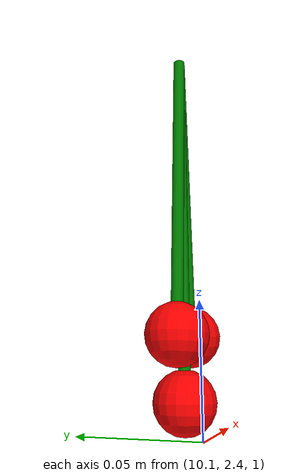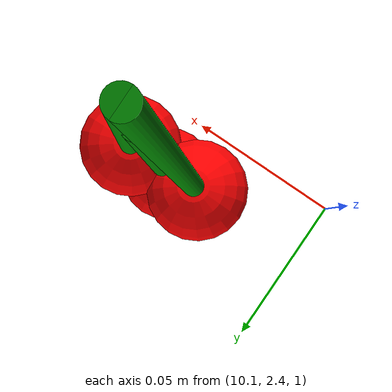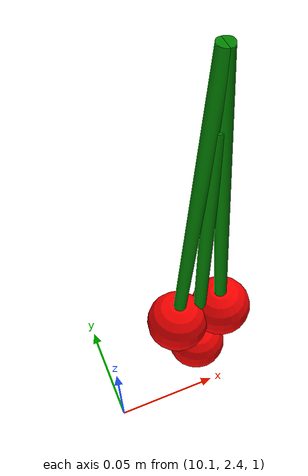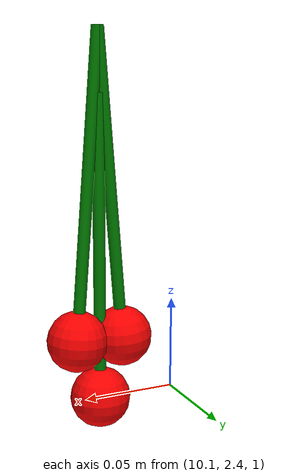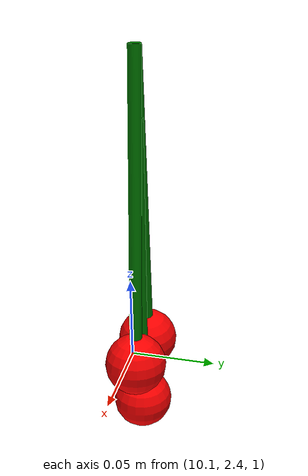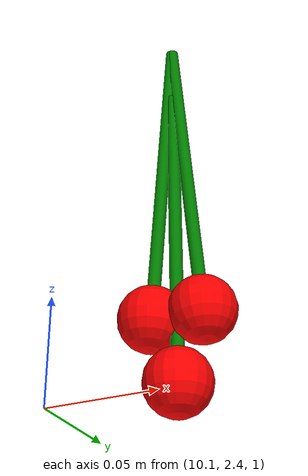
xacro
<?xml version="1.0"?>
<robot xmlns:xacro="http://www.ros.org/wiki/xacro" name="straw_cluster5">

<xacro:arg name="tf_prefix" default=""/>

<link name="world"/>

<!-- Robot1 -->
<link name="$(arg tf_prefix)/yball_stem13">
  <gravity>1</gravity>
  <inertial>
    <origin xyz="0 0 0" rpy="0 0 0"/>
    <mass value=".00001"/>
    <inertia ixx="0.0000004" ixy="0.0" ixz="0.0" iyy="0.0000004" iyz="0.0" izz="0.0000004" />
  </inertial>
  <visual><geometry><sphere radius=".00001"/></geometry></visual>
  <collision><geometry><sphere radius=".00001"/></geometry></collision>
</link>
<gazebo reference="$(arg tf_prefix)/yball_stem13">
  <material>Gazebo/Green</material>
</gazebo>

<joint name="$(arg tf_prefix)/stem13y" type="revolute" >
  <parent link="world" />
  <child link="$(arg tf_prefix)/yball_stem13" />
  <origin xyz="10.15 2.42 1.16" rpy="0 0 0"/>
  <axis xyz="0 1 0" />
  <dynamics damping="0.0001" friction="0.0002"/>
  <limit
      lower="-${pi}" upper="${pi}"
      effort="1" velocity="0.1" />
</joint>

<link name="$(arg tf_prefix)/xball_stem13">
  <gravity>1</gravity>
  <inertial>
    <origin xyz="0 0 0" rpy="0 0 0"/>
    <mass value=".00001"/>
    <inertia ixx="0.0000004" ixy="0.0" ixz="0.0" iyy="0.0000004" iyz="0.0" izz="0.0000004" />
  </inertial>
  <visual><geometry><sphere radius=".00001"/></geometry></visual>
  <collision><geometry><sphere radius=".00001"/></geometry></collision>
</link>
<gazebo reference="$(arg tf_prefix)/xball_stem13">
  <material>Gazebo/Green</material>
</gazebo>

<joint name="$(arg tf_prefix)/stem13x" type="revolute" >
  <parent link="$(arg tf_prefix)/yball_stem13"/>
  <child link="$(arg tf_prefix)/xball_stem13"/>
  <origin xyz="0 0 0" rpy="0 0 0"/>
  <axis xyz="1 0 0" />
  <dynamics damping="0.0001" friction="0.0002" />
  <limit
      lower="-${pi}" upper="${pi}"
      effort="1" velocity="0.1" />
</joint>

<!-- Define stem of straw13 -->
<link name="$(arg tf_prefix)/stem13">
  <gravity>1</gravity>
  <inertial>
    <origin xyz="0 0 0" rpy="0 0 0"/>
    <mass value="0.001"/>
    <inertia
      ixx="0.0000000005" ixy="0.0" ixz="0.0"
      iyy="0.0000000005" iyz="0.0"
      izz="0.0000000005"/>
  </inertial>
  <collision>
    <geometry>
		<cylinder length="0.15" radius="0.003"/>
    </geometry>
    <material name="green">
      <color rgba="0 ${128/255} 0 1"/>
    </material>
    <origin xyz="0 0 -0.075" rpy="0 0 0"/>
  </collision>
  <visual>
    <geometry>
		<cylinder length="0.15" radius="0.003"/>
    </geometry>
    <material name="green">
      <color rgba="0 ${128/255} 0 1"/>
    </material>
    <origin xyz="0 0 -0.075" rpy="0 0 0"/>
  </visual>
</link>
<gazebo reference="$(arg tf_prefix)/stem13">
  <mu1>0.01</mu1>
  <mu2>0.01</mu2>
  <selfCollide>true</selfCollide>
  <maxContacts>2</maxContacts>
  <minDepth>0</minDepth>
  <maxVel>0.01</maxVel>
  <kp  value="1" />
  <kd  value="0.1" />
  <material>Gazebo/Green</material>
</gazebo>

<joint name="$(arg tf_prefix)/xball_stem13" type="fixed">
  <parent link="$(arg tf_prefix)/xball_stem13"/>
  <child link="$(arg tf_prefix)/stem13"/>
  <origin xyz="0 0 0" rpy="0 0 0"/>
</joint>

<!-- Define straw4 -->
<link name="$(arg tf_prefix)/straw13">
  <gravity>1</gravity>
  <inertial>
    <origin xyz="0 0 0" rpy="0 0 0"/>
    <mass value="0.002"/>
    <inertia
      ixx="0.00000018" ixy="0.0" ixz="0.0"
      iyy="0.00000018" iyz="0.0"
      izz="0.00000018"/>
  </inertial>
  <collision>
    <geometry>
    <sphere radius="0.015"/>
    </geometry>
  </collision>
  <visual>
    <geometry>
		<sphere radius="0.015"/>
    </geometry>
    <material name="Red">
      <color rgba="1 0 0 1"/>
    </material>
  </visual>
</link>
<gazebo reference="$(arg tf_prefix)/straw13">
  <mu1>0.01</mu1>
  <mu2>0.01</mu2>
  <selfCollide>true</selfCollide>
  <maxContacts>2</maxContacts>
  <minDepth>0</minDepth>
  <maxVel>0.01</maxVel>
  <kp  value="1" />
  <kd  value="0.1" />
  <material>Gazebo/Red</material>
</gazebo>

<joint name="$(arg tf_prefix)/straw13_stem13" type="fixed">
  <parent link="$(arg tf_prefix)/stem13"/>
  <child link="$(arg tf_prefix)/straw13"/>
  <origin xyz="0 0 -0.15" rpy="0 0 0"/>
</joint>

<!-- Robot2 -->
<link name="$(arg tf_prefix)/yball_stem14">
  <gravity>1</gravity>
  <inertial>
    <origin xyz="0 0 0" rpy="0 0 0"/>
    <mass value=".00001"/>
    <inertia ixx="0.0000004" ixy="0.0" ixz="0.0" iyy="0.0000004" iyz="0.0" izz="0.0000004" />
  </inertial>
  <visual><geometry><sphere radius=".00001"/></geometry></visual>
  <collision><geometry><sphere radius=".00001"/></geometry></collision>
</link>
<gazebo reference="$(arg tf_prefix)/yball_stem14">
  <material>Gazebo/Green</material>
</gazebo>

<joint name="$(arg tf_prefix)/stem14y" type="revolute" >
  <parent link="world" />
  <child link="$(arg tf_prefix)/yball_stem14" />
  <origin xyz="10.15 2.42 1.19" rpy="0 -${pi/40} 0"/> <!-- 0 -${pi/40} 0 -->
  <axis xyz="0 1 0" />
  <dynamics damping="0.0001" friction="0.0002"/>
  <limit
      lower="-${pi}" upper="${pi}"
      effort="1" velocity="0.1" />
</joint>

<link name="$(arg tf_prefix)/xball_stem14">
  <gravity>1</gravity>
  <inertial>
    <origin xyz="0 0 0" rpy="0 0 0"/>
    <mass value=".00001"/>
    <inertia ixx="0.0000004" ixy="0.0" ixz="0.0" iyy="0.0000004" iyz="0.0" izz="0.0000004" />
  </inertial>
  <visual><geometry><sphere radius=".00001"/></geometry></visual>
  <collision><geometry><sphere radius=".00001"/></geometry></collision>
</link>
<gazebo reference="$(arg tf_prefix)/xball_stem14">
  <material>Gazebo/Green</material>
</gazebo>

<joint name="$(arg tf_prefix)/stem14x" type="revolute" >
  <parent link="$(arg tf_prefix)/yball_stem14"/>
  <child link="$(arg tf_prefix)/xball_stem14"/>
  <origin xyz="0 0 0" rpy="0 0 0"/>
  <axis xyz="1 0 0" />
  <dynamics damping="0.0001" friction="0.0002" />
  <limit
      lower="-${pi}" upper="${pi}"
      effort="1" velocity="0.1" />
</joint>

<!-- Define stem of straw14 -->
<link name="$(arg tf_prefix)/stem14">
  <gravity>1</gravity>
  <inertial>
    <origin xyz="0 0 0" rpy="0 0 0"/>
    <mass value="0.001"/>
    <inertia
      ixx="0.0000000005" ixy="0.0" ixz="0.0"
      iyy="0.0000000005" iyz="0.0"
      izz="0.0000000005"/>
  </inertial>
  <collision>
    <geometry>
		<cylinder length="0.15" radius="0.003"/>
    </geometry>
    <material name="green">
      <color rgba="0 ${128/255} 0 1"/>
    </material>
    <origin xyz="0 0 -0.075" rpy="0 0 0"/>
  </collision>
  <visual>
    <geometry>
		<cylinder length="0.15" radius="0.003"/>
    </geometry>
    <material name="green">
      <color rgba="0 ${128/255} 0 1"/>
    </material>
    <origin xyz="0 0 -0.075" rpy="0 0 0"/>
  </visual>
</link>
<gazebo reference="$(arg tf_prefix)/stem14">
  <mu1>0.01</mu1>
  <mu2>0.01</mu2>
  <selfCollide>true</selfCollide>
  <maxContacts>2</maxContacts>
  <minDepth>0</minDepth>
  <maxVel>0.01</maxVel>
  <kp  value="1" />
  <kd  value="0.1" />
  <material>Gazebo/Green</material>
</gazebo>

<joint name="$(arg tf_prefix)/xball_stem14" type="fixed">
  <parent link="$(arg tf_prefix)/xball_stem14"/>
  <child link="$(arg tf_prefix)/stem14"/>
  <origin xyz="0 0 0" rpy="0 0 0"/>
</joint>

<!-- Define straw14 -->
<link name="$(arg tf_prefix)/straw14">
  <gravity>1</gravity>
  <inertial>
    <origin xyz="0 0 0" rpy="0 0 0"/>
    <mass value="0.002"/>
    <inertia
      ixx="0.00000018" ixy="0.0" ixz="0.0"
      iyy="0.00000018" iyz="0.0"
      izz="0.00000018"/>
  </inertial>
  <collision>
    <geometry>
    <sphere radius="0.015"/>
    </geometry>
  </collision>
  <visual>
    <geometry>
		<sphere radius="0.015"/>
    </geometry>
    <material name="Red">
      <color rgba="1 0 0 1"/>
    </material>
  </visual>
</link>
<gazebo reference="$(arg tf_prefix)/straw14">
  <mu1>0.01</mu1>
  <mu2>0.01</mu2>
  <selfCollide>true</selfCollide>
  <maxContacts>2</maxContacts>
  <minDepth>0</minDepth>
  <maxVel>0.01</maxVel>
  <kp  value="1" />
  <kd  value="0.1" />
  <material>Gazebo/Red</material>
</gazebo>

<joint name="$(arg tf_prefix)/straw14_stem14" type="fixed">
  <parent link="$(arg tf_prefix)/stem14"/>
  <child link="$(arg tf_prefix)/straw14"/>
  <origin xyz="0 0 -0.15" rpy="0 0 0"/>
</joint>

<!-- Robot3 -->
<link name="$(arg tf_prefix)/yball_stem15">
  <gravity>1</gravity>
  <inertial>
    <origin xyz="0 0 0" rpy="0 0 0"/>
    <mass value=".00001"/>
    <inertia ixx="0.0000004" ixy="0.0" ixz="0.0" iyy="0.0000004" iyz="0.0" izz="0.0000004" />
  </inertial>
  <visual><geometry><sphere radius=".00001"/></geometry></visual>
  <collision><geometry><sphere radius=".00001"/></geometry></collision>
</link>
<gazebo reference="$(arg tf_prefix)/yball_stem15">
  <material>Gazebo/Green</material>
</gazebo>

<joint name="$(arg tf_prefix)/stem15y" type="revolute" >
  <parent link="world" />
  <child link="$(arg tf_prefix)/yball_stem15" />
  <origin xyz="10.15 2.42 1.19" rpy="0 ${pi/40} 0"/> <!-- 0 ${pi/40} 0-->
  <axis xyz="0 1 0" />
  <dynamics damping="0.0001" friction="0.0002"/>
  <limit
      lower="-${pi}" upper="${pi}"
      effort="1" velocity="0.1" />
</joint>

<link name="$(arg tf_prefix)/xball_stem15">
  <gravity>1</gravity>
  <inertial>
    <origin xyz="0 0 0" rpy="0 0 0"/>
    <mass value=".00001"/>
    <inertia ixx="0.0000004" ixy="0.0" ixz="0.0" iyy="0.0000004" iyz="0.0" izz="0.0000004" />
  </inertial>
  <visual><geometry><sphere radius=".00001"/></geometry></visual>
  <collision><geometry><sphere radius=".00001"/></geometry></collision>
</link>
<gazebo reference="$(arg tf_prefix)/xball_stem15">
  <material>Gazebo/Green</material>
</gazebo>

<joint name="$(arg tf_prefix)/stem15x" type="revolute" >
  <parent link="$(arg tf_prefix)/yball_stem15"/>
  <child link="$(arg tf_prefix)/xball_stem15"/>
  <origin xyz="0 0 0" rpy="0 0 0"/>
  <axis xyz="1 0 0" />
  <dynamics damping="0.0001" friction="0.0002" />
  <limit
      lower="-${pi}" upper="${pi}"
      effort="1" velocity="0.1" />
</joint>

<!-- Define stem of straw15 -->
<link name="$(arg tf_prefix)/stem15">
  <gravity>1</gravity>
  <inertial>
    <origin xyz="0 0 0" rpy="0 0 0"/>
    <mass value="0.002"/>
    <inertia
      ixx="0.0000000005" ixy="0.0" ixz="0.0"
      iyy="0.0000000005" iyz="0.0"
      izz="0.0000000005"/>
  </inertial>
  <collision>
    <geometry>
		<cylinder length="0.15" radius="0.003"/>
    </geometry>
    <material name="green">
      <color rgba="0 ${128/255} 0 1"/>
    </material>
    <origin xyz="0 0 -0.075" rpy="0 0 0"/>
  </collision>
  <visual>
    <geometry>
		<cylinder length="0.15" radius="0.003"/>
    </geometry>
    <material name="green">
      <color rgba="0 ${128/255} 0 1"/>
    </material>
    <origin xyz="0 0 -0.075" rpy="0 0 0"/>
  </visual>
</link>
<gazebo reference="$(arg tf_prefix)/stem15">
  <mu1>0.01</mu1>
  <mu2>0.01</mu2>
  <selfCollide>true</selfCollide>
  <maxContacts>2</maxContacts>
  <minDepth>0</minDepth>
  <maxVel>0.01</maxVel>
  <kp  value="1" />
  <kd  value="0.1" />
  <material>Gazebo/Green</material>
</gazebo>

<joint name="$(arg tf_prefix)/xball_stem15" type="fixed">
  <parent link="$(arg tf_prefix)/xball_stem15"/>
  <child link="$(arg tf_prefix)/stem15"/>
  <origin xyz="0 0 0" rpy="0 0 0"/>
</joint>

<!-- Define straw15 -->
<link name="$(arg tf_prefix)/straw15">
  <gravity>1</gravity>
  <inertial>
    <origin xyz="0 0 0" rpy="0 0 0"/>
    <mass value="0.002"/>
    <inertia
      ixx="0.00000018" ixy="0.0" ixz="0.0"
      iyy="0.00000018" iyz="0.0"
      izz="0.00000018"/>
  </inertial>
  <collision>
    <geometry>
    <sphere radius="0.015"/>
    </geometry>
  </collision>
  <visual>
    <geometry>
		<sphere radius="0.015"/>
    </geometry>
    <material name="Red">
      <color rgba="1 0 0 1"/>
    </material>
  </visual>
</link>
<gazebo reference="$(arg tf_prefix)/straw15">
  <mu1>0.01</mu1>
  <mu2>0.01</mu2>
  <selfCollide>true</selfCollide>
  <maxContacts>2</maxContacts>
  <minDepth>0</minDepth>
  <maxVel>0.01</maxVel>
  <kp  value="1" />
  <kd  value="0.1" />
  <material>Gazebo/Red</material>
</gazebo>

<joint name="$(arg tf_prefix)/straw15_stem15" type="fixed">
  <parent link="$(arg tf_prefix)/stem15"/>
  <child link="$(arg tf_prefix)/straw15"/>
  <origin xyz="0 0 -0.15" rpy="0 0 0"/>
</joint>

<gazebo>
  <plugin name="gazebo_ros_control" filename="libgazebo_ros_control.so">
    <robotSimType>gazebo_ros_control/DefaultRobotHWSim</robotSimType>
    <legacyModeNS>true</legacyModeNS>
    <robotNamespace>/straw_cluster5</robotNamespace>
  </plugin>
</gazebo>

</robot>
